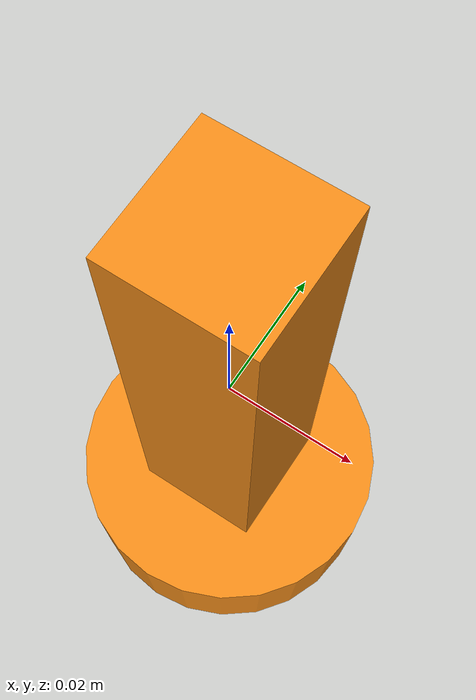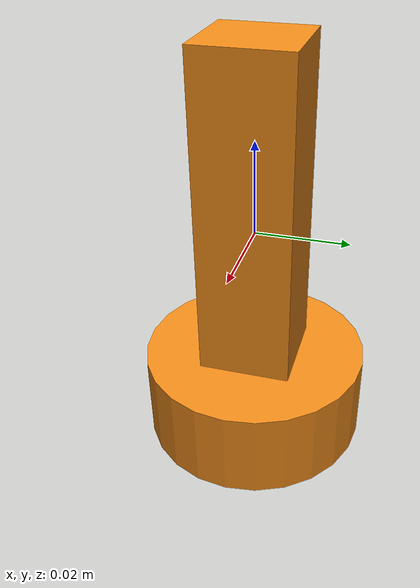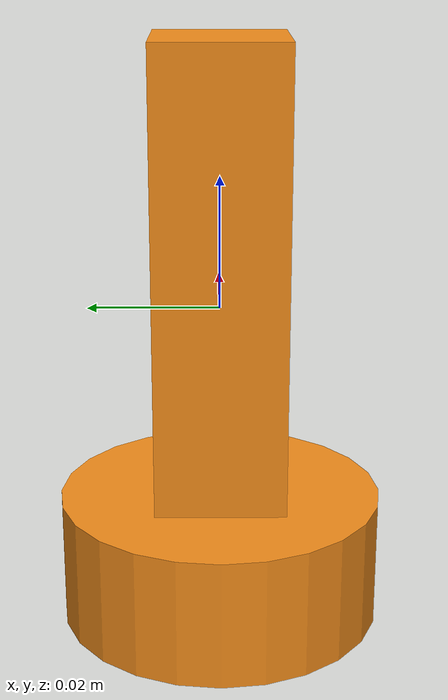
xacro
<robot name="target_box">

  <link name="target_link_1">
    <inertial>
      <origin xyz="0 0 0" />
      <mass value="0.05" />
      <inertia  ixx="0.006" ixy="0"  ixz="0"  iyy="0.006"  iyz="0"  izz="0.002"/>
    </inertial>
    <visual>
      <origin xyz="0 0 0"/>
      <geometry>
        <box size="0.02 0.02 0.08"/>
      </geometry>
    </visual>
    <collision>
      <origin xyz="0 0 0"/>
      <geometry>
        <box size="0.02 0.02 0.08"/>
      </geometry>
    </collision>
  </link>

  <joint name="base_body_joint" type="fixed">
        <parent link="target_link_1" />
        <child link = "target_link_2" />
    </joint>

  <link name="target_link_2">
    <inertial>
      <origin xyz="0 0 -0.04" />
      <mass value="0.05" />
      <inertia  ixx="0.006" ixy="0"  ixz="0"  iyy="0.006"  iyz="0"  izz="0.002"/>
    </inertial>
    <visual>
      <origin xyz="0 0 -0.04"/>
      <geometry>
        <cylinder radius="0.025" length="0.02"/>
      </geometry>
    </visual>
    <collision>
      <origin xyz="0 0 -0.04"/>
      <geometry>
        <cylinder radius="0.025" length="0.02"/>
      </geometry>
    </collision>
  </link>

  <gazebo reference="target_link_1">
    <material>Gazebo/Orange</material>
    <mu1>1.0</mu1>
    <mu2>1.0</mu2>
  </gazebo>

  <gazebo reference="target_link_2">
    <material>Gazebo/Orange</material>
    <mu1>1.0</mu1>
    <mu2>1.0</mu2>
  </gazebo>
</robot>
